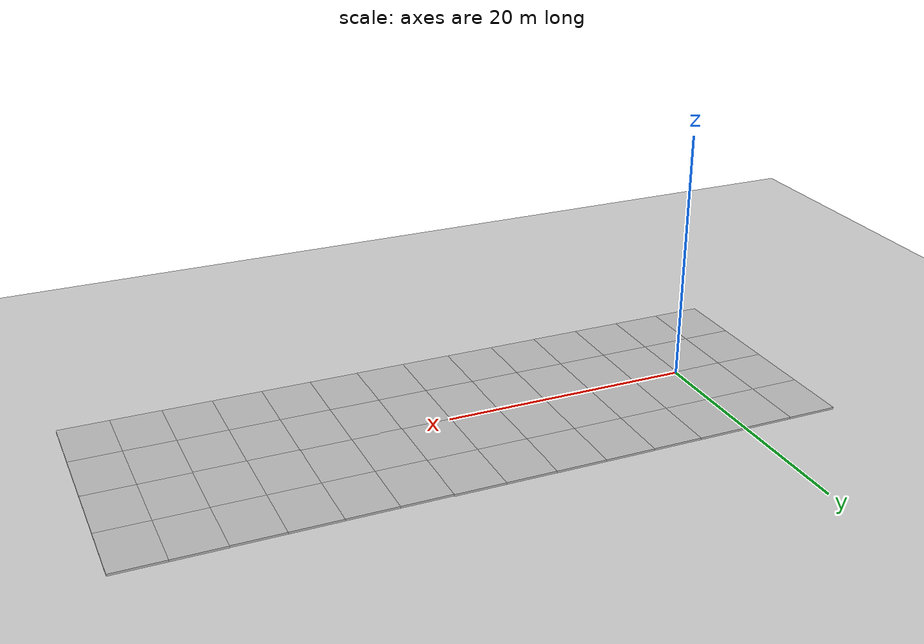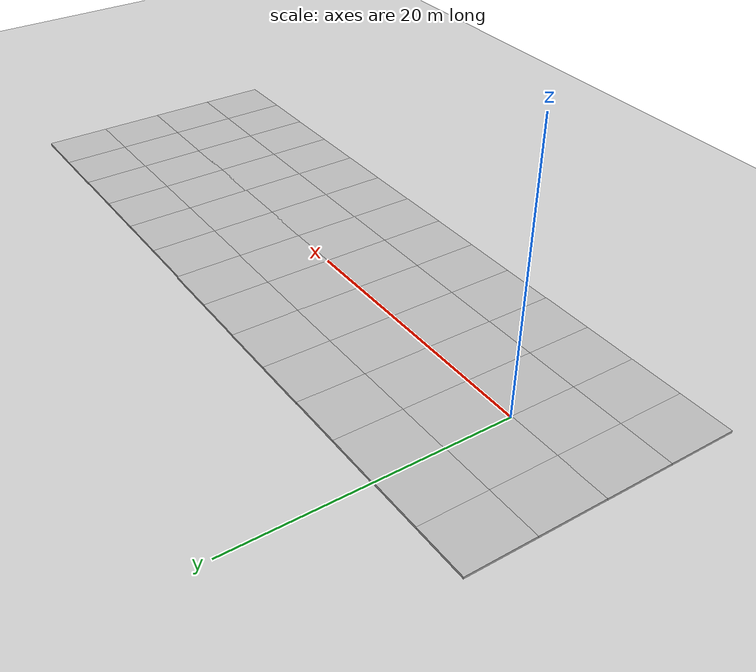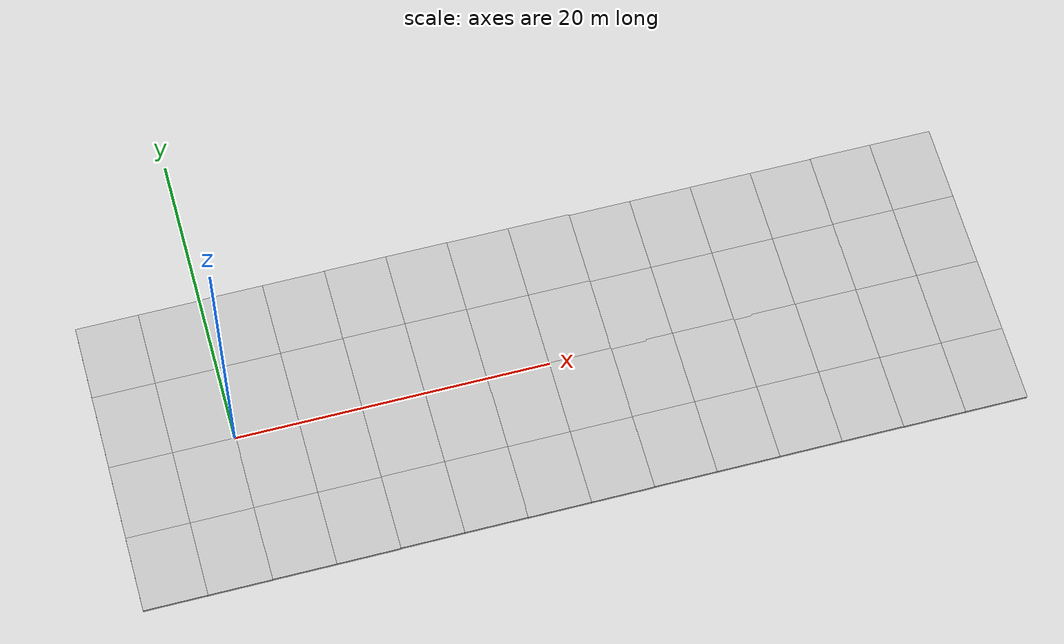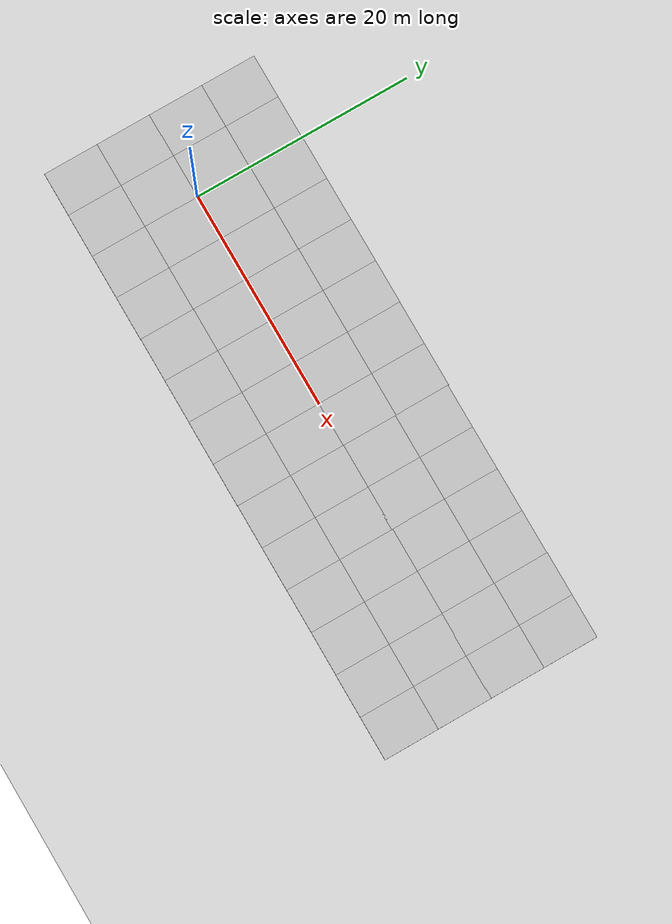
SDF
<sdf version="1.6">
 <world name="default">
  <light name="sun" type="directional">
   <pose>0 0 10 0 -0 0</pose>
   <diffuse>0.8 0.8 0.8 1</diffuse>
   <specular>0.2 0.2 0.2 1</specular>
   <attenuation>
    <range>1000</range>
    <constant>0.9</constant>
    <linear>0.01</linear>
    <quadratic>0.001</quadratic>
   </attenuation>
   <direction>-0.5 0.1 -0.9</direction>
  </light>
  <model name="ground_plane">
   <static>1</static>
   <link name="link">
    <collision name="collision">
     <geometry><plane><normal>0 0 1</normal><size>100 100</size></plane></geometry>
     <surface>
      <contact><collide_bitmask>65535</collide_bitmask></contact>
      <friction><ode><mu>100</mu><mu2>50</mu2></ode></friction>
     </surface>
    </collision>
    <visual name="visual">
     <cast_shadows>0</cast_shadows>
     <geometry><plane><normal>0 0 1</normal><size>100 100</size></plane></geometry>
     <material>
      <script><uri>file://media/materials/scripts/gazebo.material</uri><name>Gazebo/Grey</name></script>
     </material>
    </visual>
   </link>
  </model>
  <gravity>0 0 -9.8</gravity>
  <magnetic_field>6e-06 2.3e-05 -4.2e-05</magnetic_field>
  <atmosphere type="adiabatic"/>
  <physics name="default_physics" default="0" type="ode">
   <max_step_size>0.001</max_step_size>
   <real_time_factor>1</real_time_factor>
   <real_time_update_rate>1000</real_time_update_rate>
  </physics>
  <scene><ambient>0.4 0.4 0.4 1</ambient><background>0.7 0.7 0.7 1</background><shadows>1</shadows></scene>
  <audio><device>default</device></audio>
  <spherical_coordinates>
   <surface_model>EARTH_WGS84</surface_model>
   <latitude_deg>0</latitude_deg>
   <longitude_deg>0</longitude_deg>
   <elevation>0</elevation>
   <heading_deg>0</heading_deg>
  </spherical_coordinates>
  <model name="mud_box">
   <static>1</static>
   <link name="link">
    <collision name="collision"><geometry><box><size>8 10 0.2</size></box></geometry></collision>
    <visual name="visual_1">
     <pose>-2 2.5 0 0 -0 0</pose>
     <cast_shadows>0</cast_shadows>
     <geometry><box><size>4 5 0.2</size></box></geometry>
     <material>
      <script>
       <uri>model://mud_box/materials/scripts</uri>
       <uri>model://mud_box/materials/textures</uri>
       <name>vrc/mud</name>
      </script>
     </material>
    </visual>
    <visual name="visual_2">
     <pose>2 2.5 0 0 -0 0</pose>
     <cast_shadows>0</cast_shadows>
     <geometry><box><size>4 5 0.2</size></box></geometry>
     <material>
      <script>
       <uri>model://mud_box/materials/scripts</uri>
       <uri>model://mud_box/materials/textures</uri>
       <name>vrc/mud</name>
      </script>
     </material>
    </visual>
    <visual name="visual_3">
     <pose>2 -2.5 0 0 -0 0</pose>
     <cast_shadows>0</cast_shadows>
     <geometry><box><size>4 5 0.2</size></box></geometry>
     <material>
      <script>
       <uri>model://mud_box/materials/scripts</uri>
       <uri>model://mud_box/materials/textures</uri>
       <name>vrc/mud</name>
      </script>
     </material>
    </visual>
    <visual name="visual_4">
     <pose>-2 -2.5 0 0 -0 0</pose>
     <cast_shadows>0</cast_shadows>
     <geometry><box><size>4 5 0.2</size></box></geometry>
     <material>
      <script>
       <uri>model://mud_box/materials/scripts</uri>
       <uri>model://mud_box/materials/textures</uri>
       <name>vrc/mud</name>
      </script>
     </material>
    </visual>
   </link>
   <pose>4.01421 5.00803 0 0 -0 0</pose>
  </model>
  <model name="mud_box_0">
   <static>1</static>
   <link name="link">
    <collision name="collision"><geometry><box><size>8 10 0.2</size></box></geometry></collision>
    <visual name="visual_1">
     <pose>-2 2.5 0 0 -0 0</pose>
     <cast_shadows>0</cast_shadows>
     <geometry><box><size>4 5 0.2</size></box></geometry>
     <material>
      <script>
       <uri>model://mud_box/materials/scripts</uri>
       <uri>model://mud_box/materials/textures</uri>
       <name>vrc/mud</name>
      </script>
     </material>
    </visual>
    <visual name="visual_2">
     <pose>2 2.5 0 0 -0 0</pose>
     <cast_shadows>0</cast_shadows>
     <geometry><box><size>4 5 0.2</size></box></geometry>
     <material>
      <script>
       <uri>model://mud_box/materials/scripts</uri>
       <uri>model://mud_box/materials/textures</uri>
       <name>vrc/mud</name>
      </script>
     </material>
    </visual>
    <visual name="visual_3">
     <pose>2 -2.5 0 0 -0 0</pose>
     <cast_shadows>0</cast_shadows>
     <geometry><box><size>4 5 0.2</size></box></geometry>
     <material>
      <script>
       <uri>model://mud_box/materials/scripts</uri>
       <uri>model://mud_box/materials/textures</uri>
       <name>vrc/mud</name>
      </script>
     </material>
    </visual>
    <visual name="visual_4">
     <pose>-2 -2.5 0 0 -0 0</pose>
     <cast_shadows>0</cast_shadows>
     <geometry><box><size>4 5 0.2</size></box></geometry>
     <material>
      <script>
       <uri>model://mud_box/materials/scripts</uri>
       <uri>model://mud_box/materials/textures</uri>
       <name>vrc/mud</name>
      </script>
     </material>
    </visual>
   </link>
   <pose>4.01292 -4.98852 0 0 -0 0</pose>
  </model>
  <model name="mud_box_1">
   <static>1</static>
   <link name="link">
    <collision name="collision"><geometry><box><size>8 10 0.2</size></box></geometry></collision>
    <visual name="visual_1">
     <pose>-2 2.5 0 0 -0 0</pose>
     <cast_shadows>0</cast_shadows>
     <geometry><box><size>4 5 0.2</size></box></geometry>
     <material>
      <script>
       <uri>model://mud_box/materials/scripts</uri>
       <uri>model://mud_box/materials/textures</uri>
       <name>vrc/mud</name>
      </script>
     </material>
    </visual>
    <visual name="visual_2">
     <pose>2 2.5 0 0 -0 0</pose>
     <cast_shadows>0</cast_shadows>
     <geometry><box><size>4 5 0.2</size></box></geometry>
     <material>
      <script>
       <uri>model://mud_box/materials/scripts</uri>
       <uri>model://mud_box/materials/textures</uri>
       <name>vrc/mud</name>
      </script>
     </material>
    </visual>
    <visual name="visual_3">
     <pose>2 -2.5 0 0 -0 0</pose>
     <cast_shadows>0</cast_shadows>
     <geometry><box><size>4 5 0.2</size></box></geometry>
     <material>
      <script>
       <uri>model://mud_box/materials/scripts</uri>
       <uri>model://mud_box/materials/textures</uri>
       <name>vrc/mud</name>
      </script>
     </material>
    </visual>
    <visual name="visual_4">
     <pose>-2 -2.5 0 0 -0 0</pose>
     <cast_shadows>0</cast_shadows>
     <geometry><box><size>4 5 0.2</size></box></geometry>
     <material>
      <script>
       <uri>model://mud_box/materials/scripts</uri>
       <uri>model://mud_box/materials/textures</uri>
       <name>vrc/mud</name>
      </script>
     </material>
    </visual>
   </link>
   <pose>12.0061 -4.96382 0 0 -0 0</pose>
  </model>
  <model name="mud_box_2">
   <static>1</static>
   <link name="link">
    <collision name="collision"><geometry><box><size>8 10 0.2</size></box></geometry></collision>
    <visual name="visual_1">
     <pose>-2 2.5 0 0 -0 0</pose>
     <cast_shadows>0</cast_shadows>
     <geometry><box><size>4 5 0.2</size></box></geometry>
     <material>
      <script>
       <uri>model://mud_box/materials/scripts</uri>
       <uri>model://mud_box/materials/textures</uri>
       <name>vrc/mud</name>
      </script>
     </material>
    </visual>
    <visual name="visual_2">
     <pose>2 2.5 0 0 -0 0</pose>
     <cast_shadows>0</cast_shadows>
     <geometry><box><size>4 5 0.2</size></box></geometry>
     <material>
      <script>
       <uri>model://mud_box/materials/scripts</uri>
       <uri>model://mud_box/materials/textures</uri>
       <name>vrc/mud</name>
      </script>
     </material>
    </visual>
    <visual name="visual_3">
     <pose>2 -2.5 0 0 -0 0</pose>
     <cast_shadows>0</cast_shadows>
     <geometry><box><size>4 5 0.2</size></box></geometry>
     <material>
      <script>
       <uri>model://mud_box/materials/scripts</uri>
       <uri>model://mud_box/materials/textures</uri>
       <name>vrc/mud</name>
      </script>
     </material>
    </visual>
    <visual name="visual_4">
     <pose>-2 -2.5 0 0 -0 0</pose>
     <cast_shadows>0</cast_shadows>
     <geometry><box><size>4 5 0.2</size></box></geometry>
     <material>
      <script>
       <uri>model://mud_box/materials/scripts</uri>
       <uri>model://mud_box/materials/textures</uri>
       <name>vrc/mud</name>
      </script>
     </material>
    </visual>
   </link>
   <pose>11.9943 5.02957 0 0 -0 0</pose>
  </model>
  <model name="mud_box_3">
   <static>1</static>
   <link name="link">
    <collision name="collision"><geometry><box><size>8 10 0.2</size></box></geometry></collision>
    <visual name="visual_1">
     <pose>-2 2.5 0 0 -0 0</pose>
     <cast_shadows>0</cast_shadows>
     <geometry><box><size>4 5 0.2</size></box></geometry>
     <material>
      <script>
       <uri>model://mud_box/materials/scripts</uri>
       <uri>model://mud_box/materials/textures</uri>
       <name>vrc/mud</name>
      </script>
     </material>
    </visual>
    <visual name="visual_2">
     <pose>2 2.5 0 0 -0 0</pose>
     <cast_shadows>0</cast_shadows>
     <geometry><box><size>4 5 0.2</size></box></geometry>
     <material>
      <script>
       <uri>model://mud_box/materials/scripts</uri>
       <uri>model://mud_box/materials/textures</uri>
       <name>vrc/mud</name>
      </script>
     </material>
    </visual>
    <visual name="visual_3">
     <pose>2 -2.5 0 0 -0 0</pose>
     <cast_shadows>0</cast_shadows>
     <geometry><box><size>4 5 0.2</size></box></geometry>
     <material>
      <script>
       <uri>model://mud_box/materials/scripts</uri>
       <uri>model://mud_box/materials/textures</uri>
       <name>vrc/mud</name>
      </script>
     </material>
    </visual>
    <visual name="visual_4">
     <pose>-2 -2.5 0 0 -0 0</pose>
     <cast_shadows>0</cast_shadows>
     <geometry><box><size>4 5 0.2</size></box></geometry>
     <material>
      <script>
       <uri>model://mud_box/materials/scripts</uri>
       <uri>model://mud_box/materials/textures</uri>
       <name>vrc/mud</name>
      </script>
     </material>
    </visual>
   </link>
   <pose>19.9745 -4.97267 0 0 -0 0</pose>
  </model>
  <model name="mud_box_4">
   <static>1</static>
   <link name="link">
    <collision name="collision"><geometry><box><size>8 10 0.2</size></box></geometry></collision>
    <visual name="visual_1">
     <pose>-2 2.5 0 0 -0 0</pose>
     <cast_shadows>0</cast_shadows>
     <geometry><box><size>4 5 0.2</size></box></geometry>
     <material>
      <script>
       <uri>model://mud_box/materials/scripts</uri>
       <uri>model://mud_box/materials/textures</uri>
       <name>vrc/mud</name>
      </script>
     </material>
    </visual>
    <visual name="visual_2">
     <pose>2 2.5 0 0 -0 0</pose>
     <cast_shadows>0</cast_shadows>
     <geometry><box><size>4 5 0.2</size></box></geometry>
     <material>
      <script>
       <uri>model://mud_box/materials/scripts</uri>
       <uri>model://mud_box/materials/textures</uri>
       <name>vrc/mud</name>
      </script>
     </material>
    </visual>
    <visual name="visual_3">
     <pose>2 -2.5 0 0 -0 0</pose>
     <cast_shadows>0</cast_shadows>
     <geometry><box><size>4 5 0.2</size></box></geometry>
     <material>
      <script>
       <uri>model://mud_box/materials/scripts</uri>
       <uri>model://mud_box/materials/textures</uri>
       <name>vrc/mud</name>
      </script>
     </material>
    </visual>
    <visual name="visual_4">
     <pose>-2 -2.5 0 0 -0 0</pose>
     <cast_shadows>0</cast_shadows>
     <geometry><box><size>4 5 0.2</size></box></geometry>
     <material>
      <script>
       <uri>model://mud_box/materials/scripts</uri>
       <uri>model://mud_box/materials/textures</uri>
       <name>vrc/mud</name>
      </script>
     </material>
    </visual>
   </link>
   <pose>19.9655 5.01347 0 0 -0 0</pose>
  </model>
  <model name="mud_box_5">
   <static>1</static>
   <link name="link">
    <collision name="collision"><geometry><box><size>8 10 0.2</size></box></geometry></collision>
    <visual name="visual_1">
     <pose>-2 2.5 0 0 -0 0</pose>
     <cast_shadows>0</cast_shadows>
     <geometry><box><size>4 5 0.2</size></box></geometry>
     <material>
      <script>
       <uri>model://mud_box/materials/scripts</uri>
       <uri>model://mud_box/materials/textures</uri>
       <name>vrc/mud</name>
      </script>
     </material>
    </visual>
    <visual name="visual_2">
     <pose>2 2.5 0 0 -0 0</pose>
     <cast_shadows>0</cast_shadows>
     <geometry><box><size>4 5 0.2</size></box></geometry>
     <material>
      <script>
       <uri>model://mud_box/materials/scripts</uri>
       <uri>model://mud_box/materials/textures</uri>
       <name>vrc/mud</name>
      </script>
     </material>
    </visual>
    <visual name="visual_3">
     <pose>2 -2.5 0 0 -0 0</pose>
     <cast_shadows>0</cast_shadows>
     <geometry><box><size>4 5 0.2</size></box></geometry>
     <material>
      <script>
       <uri>model://mud_box/materials/scripts</uri>
       <uri>model://mud_box/materials/textures</uri>
       <name>vrc/mud</name>
      </script>
     </material>
    </visual>
    <visual name="visual_4">
     <pose>-2 -2.5 0 0 -0 0</pose>
     <cast_shadows>0</cast_shadows>
     <geometry><box><size>4 5 0.2</size></box></geometry>
     <material>
      <script>
       <uri>model://mud_box/materials/scripts</uri>
       <uri>model://mud_box/materials/textures</uri>
       <name>vrc/mud</name>
      </script>
     </material>
    </visual>
   </link>
   <pose>27.954 -4.95386 0 0 -0 0</pose>
  </model>
  <model name="mud_box_6">
   <static>1</static>
   <link name="link">
    <collision name="collision"><geometry><box><size>8 10 0.2</size></box></geometry></collision>
    <visual name="visual_1">
     <pose>-2 2.5 0 0 -0 0</pose>
     <cast_shadows>0</cast_shadows>
     <geometry><box><size>4 5 0.2</size></box></geometry>
     <material>
      <script>
       <uri>model://mud_box/materials/scripts</uri>
       <uri>model://mud_box/materials/textures</uri>
       <name>vrc/mud</name>
      </script>
     </material>
    </visual>
    <visual name="visual_2">
     <pose>2 2.5 0 0 -0 0</pose>
     <cast_shadows>0</cast_shadows>
     <geometry><box><size>4 5 0.2</size></box></geometry>
     <material>
      <script>
       <uri>model://mud_box/materials/scripts</uri>
       <uri>model://mud_box/materials/textures</uri>
       <name>vrc/mud</name>
      </script>
     </material>
    </visual>
    <visual name="visual_3">
     <pose>2 -2.5 0 0 -0 0</pose>
     <cast_shadows>0</cast_shadows>
     <geometry><box><size>4 5 0.2</size></box></geometry>
     <material>
      <script>
       <uri>model://mud_box/materials/scripts</uri>
       <uri>model://mud_box/materials/textures</uri>
       <name>vrc/mud</name>
      </script>
     </material>
    </visual>
    <visual name="visual_4">
     <pose>-2 -2.5 0 0 -0 0</pose>
     <cast_shadows>0</cast_shadows>
     <geometry><box><size>4 5 0.2</size></box></geometry>
     <material>
      <script>
       <uri>model://mud_box/materials/scripts</uri>
       <uri>model://mud_box/materials/textures</uri>
       <name>vrc/mud</name>
      </script>
     </material>
    </visual>
   </link>
   <pose>27.9405 4.94528 0 0 -0 0</pose>
  </model>
  <model name="mud_box_7">
   <static>1</static>
   <link name="link">
    <collision name="collision"><geometry><box><size>8 10 0.2</size></box></geometry></collision>
    <visual name="visual_1">
     <pose>-2 2.5 0 0 -0 0</pose>
     <cast_shadows>0</cast_shadows>
     <geometry><box><size>4 5 0.2</size></box></geometry>
     <material>
      <script>
       <uri>model://mud_box/materials/scripts</uri>
       <uri>model://mud_box/materials/textures</uri>
       <name>vrc/mud</name>
      </script>
     </material>
    </visual>
    <visual name="visual_2">
     <pose>2 2.5 0 0 -0 0</pose>
     <cast_shadows>0</cast_shadows>
     <geometry><box><size>4 5 0.2</size></box></geometry>
     <material>
      <script>
       <uri>model://mud_box/materials/scripts</uri>
       <uri>model://mud_box/materials/textures</uri>
       <name>vrc/mud</name>
      </script>
     </material>
    </visual>
    <visual name="visual_3">
     <pose>2 -2.5 0 0 -0 0</pose>
     <cast_shadows>0</cast_shadows>
     <geometry><box><size>4 5 0.2</size></box></geometry>
     <material>
      <script>
       <uri>model://mud_box/materials/scripts</uri>
       <uri>model://mud_box/materials/textures</uri>
       <name>vrc/mud</name>
      </script>
     </material>
    </visual>
    <visual name="visual_4">
     <pose>-2 -2.5 0 0 -0 0</pose>
     <cast_shadows>0</cast_shadows>
     <geometry><box><size>4 5 0.2</size></box></geometry>
     <material>
      <script>
       <uri>model://mud_box/materials/scripts</uri>
       <uri>model://mud_box/materials/textures</uri>
       <name>vrc/mud</name>
      </script>
     </material>
    </visual>
   </link>
   <pose>35.9518 -4.94758 0 0 -0 0</pose>
  </model>
  <model name="mud_box_8">
   <static>1</static>
   <link name="link">
    <collision name="collision"><geometry><box><size>8 10 0.2</size></box></geometry></collision>
    <visual name="visual_1">
     <pose>-2 2.5 0 0 -0 0</pose>
     <cast_shadows>0</cast_shadows>
     <geometry><box><size>4 5 0.2</size></box></geometry>
     <material>
      <script>
       <uri>model://mud_box/materials/scripts</uri>
       <uri>model://mud_box/materials/textures</uri>
       <name>vrc/mud</name>
      </script>
     </material>
    </visual>
    <visual name="visual_2">
     <pose>2 2.5 0 0 -0 0</pose>
     <cast_shadows>0</cast_shadows>
     <geometry><box><size>4 5 0.2</size></box></geometry>
     <material>
      <script>
       <uri>model://mud_box/materials/scripts</uri>
       <uri>model://mud_box/materials/textures</uri>
       <name>vrc/mud</name>
      </script>
     </material>
    </visual>
    <visual name="visual_3">
     <pose>2 -2.5 0 0 -0 0</pose>
     <cast_shadows>0</cast_shadows>
     <geometry><box><size>4 5 0.2</size></box></geometry>
     <material>
      <script>
       <uri>model://mud_box/materials/scripts</uri>
       <uri>model://mud_box/materials/textures</uri>
       <name>vrc/mud</name>
      </script>
     </material>
    </visual>
    <visual name="visual_4">
     <pose>-2 -2.5 0 0 -0 0</pose>
     <cast_shadows>0</cast_shadows>
     <geometry><box><size>4 5 0.2</size></box></geometry>
     <material>
      <script>
       <uri>model://mud_box/materials/scripts</uri>
       <uri>model://mud_box/materials/textures</uri>
       <name>vrc/mud</name>
      </script>
     </material>
    </visual>
   </link>
   <pose>35.9215 4.95375 0 0 -0 0</pose>
  </model>
  <model name="mud_box_9">
   <static>1</static>
   <link name="link">
    <collision name="collision"><geometry><box><size>8 10 0.2</size></box></geometry></collision>
    <visual name="visual_1">
     <pose>-2 2.5 0 0 -0 0</pose>
     <cast_shadows>0</cast_shadows>
     <geometry><box><size>4 5 0.2</size></box></geometry>
     <material>
      <script>
       <uri>model://mud_box/materials/scripts</uri>
       <uri>model://mud_box/materials/textures</uri>
       <name>vrc/mud</name>
      </script>
     </material>
    </visual>
    <visual name="visual_2">
     <pose>2 2.5 0 0 -0 0</pose>
     <cast_shadows>0</cast_shadows>
     <geometry><box><size>4 5 0.2</size></box></geometry>
     <material>
      <script>
       <uri>model://mud_box/materials/scripts</uri>
       <uri>model://mud_box/materials/textures</uri>
       <name>vrc/mud</name>
      </script>
     </material>
    </visual>
    <visual name="visual_3">
     <pose>2 -2.5 0 0 -0 0</pose>
     <cast_shadows>0</cast_shadows>
     <geometry><box><size>4 5 0.2</size></box></geometry>
     <material>
      <script>
       <uri>model://mud_box/materials/scripts</uri>
       <uri>model://mud_box/materials/textures</uri>
       <name>vrc/mud</name>
      </script>
     </material>
    </visual>
    <visual name="visual_4">
     <pose>-2 -2.5 0 0 -0 0</pose>
     <cast_shadows>0</cast_shadows>
     <geometry><box><size>4 5 0.2</size></box></geometry>
     <material>
      <script>
       <uri>model://mud_box/materials/scripts</uri>
       <uri>model://mud_box/materials/textures</uri>
       <name>vrc/mud</name>
      </script>
     </material>
    </visual>
   </link>
   <pose>43.912 -4.96289 0 0 -0 0</pose>
  </model>
  <model name="mud_box_10">
   <static>1</static>
   <link name="link">
    <collision name="collision"><geometry><box><size>8 10 0.2</size></box></geometry></collision>
    <visual name="visual_1">
     <pose>-2 2.5 0 0 -0 0</pose>
     <cast_shadows>0</cast_shadows>
     <geometry><box><size>4 5 0.2</size></box></geometry>
     <material>
      <script>
       <uri>model://mud_box/materials/scripts</uri>
       <uri>model://mud_box/materials/textures</uri>
       <name>vrc/mud</name>
      </script>
     </material>
    </visual>
    <visual name="visual_2">
     <pose>2 2.5 0 0 -0 0</pose>
     <cast_shadows>0</cast_shadows>
     <geometry><box><size>4 5 0.2</size></box></geometry>
     <material>
      <script>
       <uri>model://mud_box/materials/scripts</uri>
       <uri>model://mud_box/materials/textures</uri>
       <name>vrc/mud</name>
      </script>
     </material>
    </visual>
    <visual name="visual_3">
     <pose>2 -2.5 0 0 -0 0</pose>
     <cast_shadows>0</cast_shadows>
     <geometry><box><size>4 5 0.2</size></box></geometry>
     <material>
      <script>
       <uri>model://mud_box/materials/scripts</uri>
       <uri>model://mud_box/materials/textures</uri>
       <name>vrc/mud</name>
      </script>
     </material>
    </visual>
    <visual name="visual_4">
     <pose>-2 -2.5 0 0 -0 0</pose>
     <cast_shadows>0</cast_shadows>
     <geometry><box><size>4 5 0.2</size></box></geometry>
     <material>
      <script>
       <uri>model://mud_box/materials/scripts</uri>
       <uri>model://mud_box/materials/textures</uri>
       <name>vrc/mud</name>
      </script>
     </material>
    </visual>
   </link>
   <pose>43.9066 4.98498 0 0 -0 0</pose>
  </model>
  <model name="mud_box_11">
   <static>1</static>
   <link name="link">
    <collision name="collision"><geometry><box><size>8 10 0.2</size></box></geometry></collision>
    <visual name="visual_1">
     <pose>-2 2.5 0 0 -0 0</pose>
     <cast_shadows>0</cast_shadows>
     <geometry><box><size>4 5 0.2</size></box></geometry>
     <material>
      <script>
       <uri>model://mud_box/materials/scripts</uri>
       <uri>model://mud_box/materials/textures</uri>
       <name>vrc/mud</name>
      </script>
     </material>
    </visual>
    <visual name="visual_2">
     <pose>2 2.5 0 0 -0 0</pose>
     <cast_shadows>0</cast_shadows>
     <geometry><box><size>4 5 0.2</size></box></geometry>
     <material>
      <script>
       <uri>model://mud_box/materials/scripts</uri>
       <uri>model://mud_box/materials/textures</uri>
       <name>vrc/mud</name>
      </script>
     </material>
    </visual>
    <visual name="visual_3">
     <pose>2 -2.5 0 0 -0 0</pose>
     <cast_shadows>0</cast_shadows>
     <geometry><box><size>4 5 0.2</size></box></geometry>
     <material>
      <script>
       <uri>model://mud_box/materials/scripts</uri>
       <uri>model://mud_box/materials/textures</uri>
       <name>vrc/mud</name>
      </script>
     </material>
    </visual>
    <visual name="visual_4">
     <pose>-2 -2.5 0 0 -0 0</pose>
     <cast_shadows>0</cast_shadows>
     <geometry><box><size>4 5 0.2</size></box></geometry>
     <material>
      <script>
       <uri>model://mud_box/materials/scripts</uri>
       <uri>model://mud_box/materials/textures</uri>
       <name>vrc/mud</name>
      </script>
     </material>
    </visual>
   </link>
   <pose>-3.96539 -4.99798 0 0 -0 0</pose>
  </model>
  <model name="mud_box_12">
   <static>1</static>
   <link name="link">
    <collision name="collision"><geometry><box><size>8 10 0.2</size></box></geometry></collision>
    <visual name="visual_1">
     <pose>-2 2.5 0 0 -0 0</pose>
     <cast_shadows>0</cast_shadows>
     <geometry><box><size>4 5 0.2</size></box></geometry>
     <material>
      <script>
       <uri>model://mud_box/materials/scripts</uri>
       <uri>model://mud_box/materials/textures</uri>
       <name>vrc/mud</name>
      </script>
     </material>
    </visual>
    <visual name="visual_2">
     <pose>2 2.5 0 0 -0 0</pose>
     <cast_shadows>0</cast_shadows>
     <geometry><box><size>4 5 0.2</size></box></geometry>
     <material>
      <script>
       <uri>model://mud_box/materials/scripts</uri>
       <uri>model://mud_box/materials/textures</uri>
       <name>vrc/mud</name>
      </script>
     </material>
    </visual>
    <visual name="visual_3">
     <pose>2 -2.5 0 0 -0 0</pose>
     <cast_shadows>0</cast_shadows>
     <geometry><box><size>4 5 0.2</size></box></geometry>
     <material>
      <script>
       <uri>model://mud_box/materials/scripts</uri>
       <uri>model://mud_box/materials/textures</uri>
       <name>vrc/mud</name>
      </script>
     </material>
    </visual>
    <visual name="visual_4">
     <pose>-2 -2.5 0 0 -0 0</pose>
     <cast_shadows>0</cast_shadows>
     <geometry><box><size>4 5 0.2</size></box></geometry>
     <material>
      <script>
       <uri>model://mud_box/materials/scripts</uri>
       <uri>model://mud_box/materials/textures</uri>
       <name>vrc/mud</name>
      </script>
     </material>
    </visual>
   </link>
   <pose>-3.96131 4.96711 0 0 -0 0</pose>
  </model>
 </world>
</sdf>
